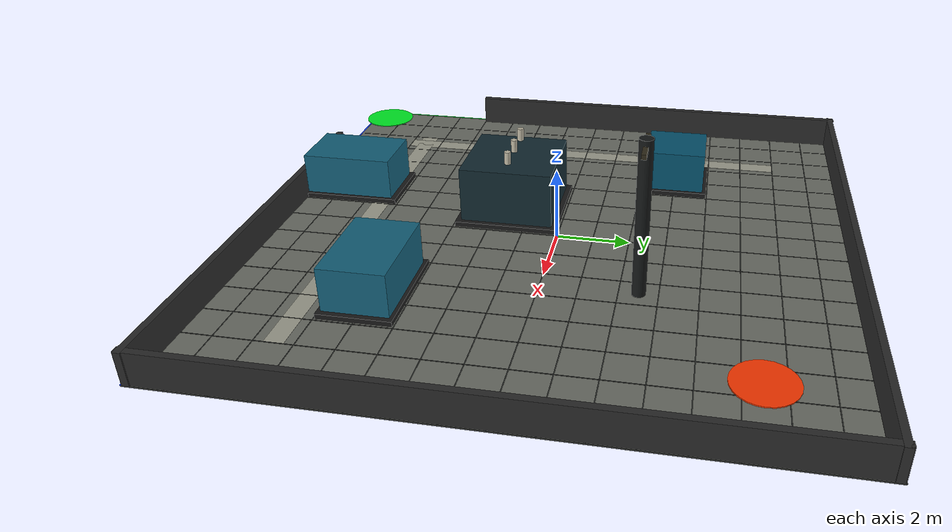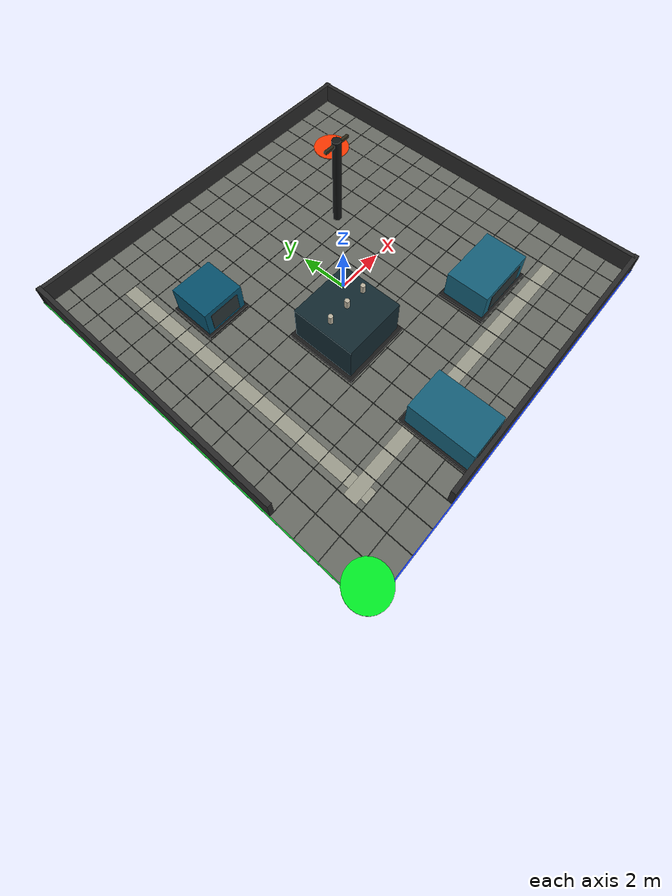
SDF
<?xml version='1.0' encoding='utf-8'?>
<sdf version="1.9">
  <world name="substation_training">
    <gravity>0 0 -9.81</gravity>
    <magnetic_field>6e-06 2.3e-05 -4.2e-05</magnetic_field>
    <atmosphere type="adiabatic" />
    <scene>
      <ambient>0.72 0.72 0.72 1</ambient>
      <background>0.72 0.75 0.78 1</background>
    </scene>
    <light name="sun" type="directional">
      <cast_shadows>true</cast_shadows>
      <pose>0 0 20 0 0 0</pose>
      <diffuse>0.85 0.85 0.82 1</diffuse>
      <specular>0.2 0.2 0.2 1</specular>
      <direction>-0.5 0.1 -0.9</direction>
    </light>
    <spherical_coordinates>
      <surface_model>EARTH_WGS84</surface_model>
      <world_frame_orientation>ENU</world_frame_orientation>
      <latitude_deg>47.397971057728974</latitude_deg>
      <longitude_deg>8.546163739800146</longitude_deg>
      <elevation>0</elevation>
    </spherical_coordinates>
    <model name="substation_map">
      <static>true</static>
      <pose>-8 -8 0 0 0 0</pose>
      <model name="ground_plane">
        <static>true</static>
        <pose>8 8 0 0 0 0</pose>
        <link name="link">
          <collision name="collision">
            <geometry>
              <plane>
                <normal>0 0 1</normal>
                <size>20 20</size>
              </plane>
            </geometry>
          </collision>
        </link>
      </model>
      <model name="substation_floor">
        <static>true</static>
        <pose>8 8 0.01 0 0 0</pose>
        <link name="link">
          <visual name="visual">
            <pose>0 0 0 0 0 0</pose>
            <geometry>
              <box>
                <size>16 16 0.02</size>
              </box>
            </geometry>
            <material>
              <ambient>0.42 0.43 0.40 1</ambient>
              <diffuse>0.42 0.43 0.40 1</diffuse>
              <specular>0.08 0.08 0.08 1</specular>
            </material>
          </visual>
        </link>
      </model>
      <model name="substation_floor_grid">
        <static>true</static>
        <pose>0 0 0 0 0 0</pose>
        <link name="link">
          <visual name="x_grid_00">
            <pose>0 8 0.024 0 0 0</pose>
            <geometry>
              <box>
                <size>0.025 16 0.006</size>
              </box>
            </geometry>
            <material>
              <ambient>0.16 0.17 0.16 1</ambient>
              <diffuse>0.16 0.17 0.16 1</diffuse>
              <specular>0.08 0.08 0.08 1</specular>
            </material>
          </visual>
          <visual name="x_grid_01">
            <pose>1 8 0.024 0 0 0</pose>
            <geometry>
              <box>
                <size>0.025 16 0.006</size>
              </box>
            </geometry>
            <material>
              <ambient>0.16 0.17 0.16 1</ambient>
              <diffuse>0.16 0.17 0.16 1</diffuse>
              <specular>0.08 0.08 0.08 1</specular>
            </material>
          </visual>
          <visual name="x_grid_02">
            <pose>2 8 0.024 0 0 0</pose>
            <geometry>
              <box>
                <size>0.025 16 0.006</size>
              </box>
            </geometry>
            <material>
              <ambient>0.16 0.17 0.16 1</ambient>
              <diffuse>0.16 0.17 0.16 1</diffuse>
              <specular>0.08 0.08 0.08 1</specular>
            </material>
          </visual>
          <visual name="x_grid_03">
            <pose>3 8 0.024 0 0 0</pose>
            <geometry>
              <box>
                <size>0.025 16 0.006</size>
              </box>
            </geometry>
            <material>
              <ambient>0.16 0.17 0.16 1</ambient>
              <diffuse>0.16 0.17 0.16 1</diffuse>
              <specular>0.08 0.08 0.08 1</specular>
            </material>
          </visual>
          <visual name="x_grid_04">
            <pose>4 8 0.024 0 0 0</pose>
            <geometry>
              <box>
                <size>0.025 16 0.006</size>
              </box>
            </geometry>
            <material>
              <ambient>0.16 0.17 0.16 1</ambient>
              <diffuse>0.16 0.17 0.16 1</diffuse>
              <specular>0.08 0.08 0.08 1</specular>
            </material>
          </visual>
          <visual name="x_grid_05">
            <pose>5 8 0.024 0 0 0</pose>
            <geometry>
              <box>
                <size>0.025 16 0.006</size>
              </box>
            </geometry>
            <material>
              <ambient>0.16 0.17 0.16 1</ambient>
              <diffuse>0.16 0.17 0.16 1</diffuse>
              <specular>0.08 0.08 0.08 1</specular>
            </material>
          </visual>
          <visual name="x_grid_06">
            <pose>6 8 0.024 0 0 0</pose>
            <geometry>
              <box>
                <size>0.025 16 0.006</size>
              </box>
            </geometry>
            <material>
              <ambient>0.16 0.17 0.16 1</ambient>
              <diffuse>0.16 0.17 0.16 1</diffuse>
              <specular>0.08 0.08 0.08 1</specular>
            </material>
          </visual>
          <visual name="x_grid_07">
            <pose>7 8 0.024 0 0 0</pose>
            <geometry>
              <box>
                <size>0.025 16 0.006</size>
              </box>
            </geometry>
            <material>
              <ambient>0.16 0.17 0.16 1</ambient>
              <diffuse>0.16 0.17 0.16 1</diffuse>
              <specular>0.08 0.08 0.08 1</specular>
            </material>
          </visual>
          <visual name="x_grid_08">
            <pose>8 8 0.024 0 0 0</pose>
            <geometry>
              <box>
                <size>0.025 16 0.006</size>
              </box>
            </geometry>
            <material>
              <ambient>0.16 0.17 0.16 1</ambient>
              <diffuse>0.16 0.17 0.16 1</diffuse>
              <specular>0.08 0.08 0.08 1</specular>
            </material>
          </visual>
          <visual name="x_grid_09">
            <pose>9 8 0.024 0 0 0</pose>
            <geometry>
              <box>
                <size>0.025 16 0.006</size>
              </box>
            </geometry>
            <material>
              <ambient>0.16 0.17 0.16 1</ambient>
              <diffuse>0.16 0.17 0.16 1</diffuse>
              <specular>0.08 0.08 0.08 1</specular>
            </material>
          </visual>
          <visual name="x_grid_10">
            <pose>10 8 0.024 0 0 0</pose>
            <geometry>
              <box>
                <size>0.025 16 0.006</size>
              </box>
            </geometry>
            <material>
              <ambient>0.16 0.17 0.16 1</ambient>
              <diffuse>0.16 0.17 0.16 1</diffuse>
              <specular>0.08 0.08 0.08 1</specular>
            </material>
          </visual>
          <visual name="x_grid_11">
            <pose>11 8 0.024 0 0 0</pose>
            <geometry>
              <box>
                <size>0.025 16 0.006</size>
              </box>
            </geometry>
            <material>
              <ambient>0.16 0.17 0.16 1</ambient>
              <diffuse>0.16 0.17 0.16 1</diffuse>
              <specular>0.08 0.08 0.08 1</specular>
            </material>
          </visual>
          <visual name="x_grid_12">
            <pose>12 8 0.024 0 0 0</pose>
            <geometry>
              <box>
                <size>0.025 16 0.006</size>
              </box>
            </geometry>
            <material>
              <ambient>0.16 0.17 0.16 1</ambient>
              <diffuse>0.16 0.17 0.16 1</diffuse>
              <specular>0.08 0.08 0.08 1</specular>
            </material>
          </visual>
          <visual name="x_grid_13">
            <pose>13 8 0.024 0 0 0</pose>
            <geometry>
              <box>
                <size>0.025 16 0.006</size>
              </box>
            </geometry>
            <material>
              <ambient>0.16 0.17 0.16 1</ambient>
              <diffuse>0.16 0.17 0.16 1</diffuse>
              <specular>0.08 0.08 0.08 1</specular>
            </material>
          </visual>
          <visual name="x_grid_14">
            <pose>14 8 0.024 0 0 0</pose>
            <geometry>
              <box>
                <size>0.025 16 0.006</size>
              </box>
            </geometry>
            <material>
              <ambient>0.16 0.17 0.16 1</ambient>
              <diffuse>0.16 0.17 0.16 1</diffuse>
              <specular>0.08 0.08 0.08 1</specular>
            </material>
          </visual>
          <visual name="x_grid_15">
            <pose>15 8 0.024 0 0 0</pose>
            <geometry>
              <box>
                <size>0.025 16 0.006</size>
              </box>
            </geometry>
            <material>
              <ambient>0.16 0.17 0.16 1</ambient>
              <diffuse>0.16 0.17 0.16 1</diffuse>
              <specular>0.08 0.08 0.08 1</specular>
            </material>
          </visual>
          <visual name="x_grid_16">
            <pose>16 8 0.024 0 0 0</pose>
            <geometry>
              <box>
                <size>0.025 16 0.006</size>
              </box>
            </geometry>
            <material>
              <ambient>0.16 0.17 0.16 1</ambient>
              <diffuse>0.16 0.17 0.16 1</diffuse>
              <specular>0.08 0.08 0.08 1</specular>
            </material>
          </visual>
          <visual name="y_grid_00">
            <pose>8 0 0.024 0 0 0</pose>
            <geometry>
              <box>
                <size>16 0.025 0.006</size>
              </box>
            </geometry>
            <material>
              <ambient>0.16 0.17 0.16 1</ambient>
              <diffuse>0.16 0.17 0.16 1</diffuse>
              <specular>0.08 0.08 0.08 1</specular>
            </material>
          </visual>
          <visual name="y_grid_01">
            <pose>8 1 0.024 0 0 0</pose>
            <geometry>
              <box>
                <size>16 0.025 0.006</size>
              </box>
            </geometry>
            <material>
              <ambient>0.16 0.17 0.16 1</ambient>
              <diffuse>0.16 0.17 0.16 1</diffuse>
              <specular>0.08 0.08 0.08 1</specular>
            </material>
          </visual>
          <visual name="y_grid_02">
            <pose>8 2 0.024 0 0 0</pose>
            <geometry>
              <box>
                <size>16 0.025 0.006</size>
              </box>
            </geometry>
            <material>
              <ambient>0.16 0.17 0.16 1</ambient>
              <diffuse>0.16 0.17 0.16 1</diffuse>
              <specular>0.08 0.08 0.08 1</specular>
            </material>
          </visual>
          <visual name="y_grid_03">
            <pose>8 3 0.024 0 0 0</pose>
            <geometry>
              <box>
                <size>16 0.025 0.006</size>
              </box>
            </geometry>
            <material>
              <ambient>0.16 0.17 0.16 1</ambient>
              <diffuse>0.16 0.17 0.16 1</diffuse>
              <specular>0.08 0.08 0.08 1</specular>
            </material>
          </visual>
          <visual name="y_grid_04">
            <pose>8 4 0.024 0 0 0</pose>
            <geometry>
              <box>
                <size>16 0.025 0.006</size>
              </box>
            </geometry>
            <material>
              <ambient>0.16 0.17 0.16 1</ambient>
              <diffuse>0.16 0.17 0.16 1</diffuse>
              <specular>0.08 0.08 0.08 1</specular>
            </material>
          </visual>
          <visual name="y_grid_05">
            <pose>8 5 0.024 0 0 0</pose>
            <geometry>
              <box>
                <size>16 0.025 0.006</size>
              </box>
            </geometry>
            <material>
              <ambient>0.16 0.17 0.16 1</ambient>
              <diffuse>0.16 0.17 0.16 1</diffuse>
              <specular>0.08 0.08 0.08 1</specular>
            </material>
          </visual>
          <visual name="y_grid_06">
            <pose>8 6 0.024 0 0 0</pose>
            <geometry>
              <box>
                <size>16 0.025 0.006</size>
              </box>
            </geometry>
            <material>
              <ambient>0.16 0.17 0.16 1</ambient>
              <diffuse>0.16 0.17 0.16 1</diffuse>
              <specular>0.08 0.08 0.08 1</specular>
            </material>
          </visual>
          <visual name="y_grid_07">
            <pose>8 7 0.024 0 0 0</pose>
            <geometry>
              <box>
                <size>16 0.025 0.006</size>
              </box>
            </geometry>
            <material>
              <ambient>0.16 0.17 0.16 1</ambient>
              <diffuse>0.16 0.17 0.16 1</diffuse>
              <specular>0.08 0.08 0.08 1</specular>
            </material>
          </visual>
          <visual name="y_grid_08">
            <pose>8 8 0.024 0 0 0</pose>
            <geometry>
              <box>
                <size>16 0.025 0.006</size>
              </box>
            </geometry>
            <material>
              <ambient>0.16 0.17 0.16 1</ambient>
              <diffuse>0.16 0.17 0.16 1</diffuse>
              <specular>0.08 0.08 0.08 1</specular>
            </material>
          </visual>
          <visual name="y_grid_09">
            <pose>8 9 0.024 0 0 0</pose>
            <geometry>
              <box>
                <size>16 0.025 0.006</size>
              </box>
            </geometry>
            <material>
              <ambient>0.16 0.17 0.16 1</ambient>
              <diffuse>0.16 0.17 0.16 1</diffuse>
              <specular>0.08 0.08 0.08 1</specular>
            </material>
          </visual>
          <visual name="y_grid_10">
            <pose>8 10 0.024 0 0 0</pose>
            <geometry>
              <box>
                <size>16 0.025 0.006</size>
              </box>
            </geometry>
            <material>
              <ambient>0.16 0.17 0.16 1</ambient>
              <diffuse>0.16 0.17 0.16 1</diffuse>
              <specular>0.08 0.08 0.08 1</specular>
            </material>
          </visual>
          <visual name="y_grid_11">
            <pose>8 11 0.024 0 0 0</pose>
            <geometry>
              <box>
                <size>16 0.025 0.006</size>
              </box>
            </geometry>
            <material>
              <ambient>0.16 0.17 0.16 1</ambient>
              <diffuse>0.16 0.17 0.16 1</diffuse>
              <specular>0.08 0.08 0.08 1</specular>
            </material>
          </visual>
          <visual name="y_grid_12">
            <pose>8 12 0.024 0 0 0</pose>
            <geometry>
              <box>
                <size>16 0.025 0.006</size>
              </box>
            </geometry>
            <material>
              <ambient>0.16 0.17 0.16 1</ambient>
              <diffuse>0.16 0.17 0.16 1</diffuse>
              <specular>0.08 0.08 0.08 1</specular>
            </material>
          </visual>
          <visual name="y_grid_13">
            <pose>8 13 0.024 0 0 0</pose>
            <geometry>
              <box>
                <size>16 0.025 0.006</size>
              </box>
            </geometry>
            <material>
              <ambient>0.16 0.17 0.16 1</ambient>
              <diffuse>0.16 0.17 0.16 1</diffuse>
              <specular>0.08 0.08 0.08 1</specular>
            </material>
          </visual>
          <visual name="y_grid_14">
            <pose>8 14 0.024 0 0 0</pose>
            <geometry>
              <box>
                <size>16 0.025 0.006</size>
              </box>
            </geometry>
            <material>
              <ambient>0.16 0.17 0.16 1</ambient>
              <diffuse>0.16 0.17 0.16 1</diffuse>
              <specular>0.08 0.08 0.08 1</specular>
            </material>
          </visual>
          <visual name="y_grid_15">
            <pose>8 15 0.024 0 0 0</pose>
            <geometry>
              <box>
                <size>16 0.025 0.006</size>
              </box>
            </geometry>
            <material>
              <ambient>0.16 0.17 0.16 1</ambient>
              <diffuse>0.16 0.17 0.16 1</diffuse>
              <specular>0.08 0.08 0.08 1</specular>
            </material>
          </visual>
          <visual name="y_grid_16">
            <pose>8 16 0.024 0 0 0</pose>
            <geometry>
              <box>
                <size>16 0.025 0.006</size>
              </box>
            </geometry>
            <material>
              <ambient>0.16 0.17 0.16 1</ambient>
              <diffuse>0.16 0.17 0.16 1</diffuse>
              <specular>0.08 0.08 0.08 1</specular>
            </material>
          </visual>
        </link>
      </model>
      <model name="map_axes">
        <static>true</static>
        <pose>0 0 0 0 0 0</pose>
        <link name="link">
          <visual name="east_axis">
            <pose>8 0 0.028 0 0 0</pose>
            <geometry>
              <box>
                <size>16 0.045 0.012</size>
              </box>
            </geometry>
            <material>
              <ambient>0.08 0.24 0.95 1</ambient>
              <diffuse>0.08 0.24 0.95 1</diffuse>
              <specular>0.08 0.08 0.08 1</specular>
            </material>
          </visual>
          <visual name="north_axis">
            <pose>0 8 0.028 0 0 0</pose>
            <geometry>
              <box>
                <size>0.045 16 0.012</size>
              </box>
            </geometry>
            <material>
              <ambient>0.05 0.76 0.18 1</ambient>
              <diffuse>0.05 0.76 0.18 1</diffuse>
              <specular>0.08 0.08 0.08 1</specular>
            </material>
          </visual>
        </link>
      </model>
      <model name="service_corridor_1">
        <static>true</static>
        <pose>8 2.5 0.021 0 0 0</pose>
        <link name="link">
          <visual name="visual">
            <pose>0 0 0 0 0 0</pose>
            <geometry>
              <box>
                <size>12 0.5 0.01</size>
              </box>
            </geometry>
            <material>
              <ambient>0.62 0.62 0.56 1</ambient>
              <diffuse>0.62 0.62 0.56 1</diffuse>
              <specular>0.08 0.08 0.08 1</specular>
            </material>
          </visual>
        </link>
      </model>
      <model name="service_corridor_2">
        <static>true</static>
        <pose>2.5 8 0.021 0 0 0</pose>
        <link name="link">
          <visual name="visual">
            <pose>0 0 0 0 0 0</pose>
            <geometry>
              <box>
                <size>0.5 12 0.01</size>
              </box>
            </geometry>
            <material>
              <ambient>0.62 0.62 0.56 1</ambient>
              <diffuse>0.62 0.62 0.56 1</diffuse>
              <specular>0.08 0.08 0.08 1</specular>
            </material>
          </visual>
        </link>
      </model>
      <model name="start_marker">
        <static>true</static>
        <pose>0.5 0.5 0.035 0 0 0</pose>
        <link name="link">
          <visual name="visual">
            <pose>0 0 0 0 0 0</pose>
            <geometry>
              <cylinder>
                <radius>0.8</radius>
                <length>0.03</length>
              </cylinder>
            </geometry>
            <material>
              <ambient>0.0 0.95 0.15 1</ambient>
              <diffuse>0.0 0.95 0.15 1</diffuse>
              <specular>0.08 0.08 0.08 1</specular>
            </material>
          </visual>
        </link>
      </model>
      <model name="goal_marker">
        <static>true</static>
        <pose>13.5 13.5 0.035 0 0 0</pose>
        <link name="link">
          <visual name="visual">
            <pose>0 0 0 0 0 0</pose>
            <geometry>
              <cylinder>
                <radius>0.8</radius>
                <length>0.03</length>
              </cylinder>
            </geometry>
            <material>
              <ambient>1.0 0.22 0.0 1</ambient>
              <diffuse>1.0 0.22 0.0 1</diffuse>
              <specular>0.08 0.08 0.08 1</specular>
            </material>
          </visual>
        </link>
      </model>
      <model name="entry_switchgear">
        <static>true</static>
        <pose>6 1.5 0 0 0 0</pose>
        <link name="link">
          <collision name="collision">
            <pose>0 0 0.7 0 0 0</pose>
            <geometry>
              <box>
                <size>1.84 2.76 1.4</size>
              </box>
            </geometry>
          </collision>
          <visual name="base">
            <pose>0 0 0.08 0 0 0</pose>
            <geometry>
              <box>
                <size>1.92 2.88 0.16</size>
              </box>
            </geometry>
            <material>
              <ambient>0.10 0.10 0.10 1</ambient>
              <diffuse>0.10 0.10 0.10 1</diffuse>
              <specular>0.08 0.08 0.08 1</specular>
            </material>
          </visual>
          <visual name="body">
            <pose>0 0 0.7 0 0 0</pose>
            <geometry>
              <box>
                <size>1.72 2.58 1.26</size>
              </box>
            </geometry>
            <material>
              <ambient>0.08 0.38 0.48 1</ambient>
              <diffuse>0.08 0.38 0.48 1</diffuse>
              <specular>0.08 0.08 0.08 1</specular>
            </material>
          </visual>
          <visual name="front_panel">
            <pose>0 -1.305 0.7 0 0 0</pose>
            <geometry>
              <box>
                <size>1.24 0.025 0.812</size>
              </box>
            </geometry>
            <material>
              <ambient>0.16 0.20 0.21 1</ambient>
              <diffuse>0.16 0.20 0.21 1</diffuse>
              <specular>0.08 0.08 0.08 1</specular>
            </material>
          </visual>
        </link>
      </model>
      <model name="transformer_a">
        <static>true</static>
        <pose>6.5 6.5 0 0 0 0</pose>
        <link name="link">
          <collision name="collision">
            <pose>0 0 0.9 0 0 0</pose>
            <geometry>
              <box>
                <size>2.76 2.76 1.8</size>
              </box>
            </geometry>
          </collision>
          <visual name="base">
            <pose>0 0 0.08 0 0 0</pose>
            <geometry>
              <box>
                <size>2.88 2.88 0.16</size>
              </box>
            </geometry>
            <material>
              <ambient>0.10 0.10 0.10 1</ambient>
              <diffuse>0.10 0.10 0.10 1</diffuse>
              <specular>0.08 0.08 0.08 1</specular>
            </material>
          </visual>
          <visual name="body">
            <pose>0 0 0.9 0 0 0</pose>
            <geometry>
              <box>
                <size>2.58 2.58 1.62</size>
              </box>
            </geometry>
            <material>
              <ambient>0.07 0.16 0.19 1</ambient>
              <diffuse>0.07 0.16 0.19 1</diffuse>
              <specular>0.08 0.08 0.08 1</specular>
            </material>
          </visual>
          <visual name="bushing_1">
            <pose>-0.84 0 1.98 0 0 0</pose>
            <geometry>
              <cylinder>
                <radius>0.09</radius>
                <length>0.36</length>
              </cylinder>
            </geometry>
            <material>
              <ambient>0.75 0.72 0.64 1</ambient>
              <diffuse>0.75 0.72 0.64 1</diffuse>
              <specular>0.08 0.08 0.08 1</specular>
            </material>
          </visual>
          <visual name="bushing_2">
            <pose>0 0 1.98 0 0 0</pose>
            <geometry>
              <cylinder>
                <radius>0.09</radius>
                <length>0.36</length>
              </cylinder>
            </geometry>
            <material>
              <ambient>0.75 0.72 0.64 1</ambient>
              <diffuse>0.75 0.72 0.64 1</diffuse>
              <specular>0.08 0.08 0.08 1</specular>
            </material>
          </visual>
          <visual name="bushing_3">
            <pose>0.84 0 1.98 0 0 0</pose>
            <geometry>
              <cylinder>
                <radius>0.09</radius>
                <length>0.36</length>
              </cylinder>
            </geometry>
            <material>
              <ambient>0.75 0.72 0.64 1</ambient>
              <diffuse>0.75 0.72 0.64 1</diffuse>
              <specular>0.08 0.08 0.08 1</specular>
            </material>
          </visual>
        </link>
      </model>
      <model name="cabinet_north">
        <static>true</static>
        <pose>4 11 0 0 0 0</pose>
        <link name="link">
          <collision name="collision">
            <pose>0 0 0.7 0 0 0</pose>
            <geometry>
              <box>
                <size>1.84 1.84 1.4</size>
              </box>
            </geometry>
          </collision>
          <visual name="base">
            <pose>0 0 0.08 0 0 0</pose>
            <geometry>
              <box>
                <size>1.92 1.92 0.16</size>
              </box>
            </geometry>
            <material>
              <ambient>0.10 0.10 0.10 1</ambient>
              <diffuse>0.10 0.10 0.10 1</diffuse>
              <specular>0.08 0.08 0.08 1</specular>
            </material>
          </visual>
          <visual name="body">
            <pose>0 0 0.7 0 0 0</pose>
            <geometry>
              <box>
                <size>1.72 1.72 1.26</size>
              </box>
            </geometry>
            <material>
              <ambient>0.02 0.32 0.43 1</ambient>
              <diffuse>0.02 0.32 0.43 1</diffuse>
              <specular>0.08 0.08 0.08 1</specular>
            </material>
          </visual>
          <visual name="front_panel">
            <pose>0 -0.87 0.7 0 0 0</pose>
            <geometry>
              <box>
                <size>1.24 0.025 0.812</size>
              </box>
            </geometry>
            <material>
              <ambient>0.16 0.20 0.21 1</ambient>
              <diffuse>0.16 0.20 0.21 1</diffuse>
              <specular>0.08 0.08 0.08 1</specular>
            </material>
          </visual>
        </link>
      </model>
      <model name="switchgear_east">
        <static>true</static>
        <pose>11.5 4 0 0 0 0</pose>
        <link name="link">
          <collision name="collision">
            <pose>0 0 0.7 0 0 0</pose>
            <geometry>
              <box>
                <size>2.76 1.84 1.4</size>
              </box>
            </geometry>
          </collision>
          <visual name="base">
            <pose>0 0 0.08 0 0 0</pose>
            <geometry>
              <box>
                <size>2.88 1.92 0.16</size>
              </box>
            </geometry>
            <material>
              <ambient>0.10 0.10 0.10 1</ambient>
              <diffuse>0.10 0.10 0.10 1</diffuse>
              <specular>0.08 0.08 0.08 1</specular>
            </material>
          </visual>
          <visual name="body">
            <pose>0 0 0.7 0 0 0</pose>
            <geometry>
              <box>
                <size>2.58 1.72 1.26</size>
              </box>
            </geometry>
            <material>
              <ambient>0.08 0.38 0.48 1</ambient>
              <diffuse>0.08 0.38 0.48 1</diffuse>
              <specular>0.08 0.08 0.08 1</specular>
            </material>
          </visual>
          <visual name="front_panel">
            <pose>0 -0.87 0.7 0 0 0</pose>
            <geometry>
              <box>
                <size>1.86 0.025 0.812</size>
              </box>
            </geometry>
            <material>
              <ambient>0.16 0.20 0.21 1</ambient>
              <diffuse>0.16 0.20 0.21 1</diffuse>
              <specular>0.08 0.08 0.08 1</specular>
            </material>
          </visual>
        </link>
      </model>
      <model name="pole_center">
        <static>true</static>
        <pose>10.5 10.5 0 0 0 0</pose>
        <link name="link">
          <collision name="collision">
            <pose>0 0 2.1 0 0 0</pose>
            <geometry>
              <cylinder>
                <radius>0.22</radius>
                <length>4.2</length>
              </cylinder>
            </geometry>
          </collision>
          <visual name="pole">
            <pose>0 0 2.1 0 0 0</pose>
            <geometry>
              <cylinder>
                <radius>0.18</radius>
                <length>4.2</length>
              </cylinder>
            </geometry>
            <material>
              <ambient>0.08 0.09 0.09 1</ambient>
              <diffuse>0.08 0.09 0.09 1</diffuse>
              <specular>0.08 0.08 0.08 1</specular>
            </material>
          </visual>
          <visual name="crossarm">
            <pose>0 0 4 0 0 0</pose>
            <geometry>
              <box>
                <size>1.25 0.12 0.12</size>
              </box>
            </geometry>
            <material>
              <ambient>0.18 0.16 0.10 1</ambient>
              <diffuse>0.18 0.16 0.10 1</diffuse>
              <specular>0.08 0.08 0.08 1</specular>
            </material>
          </visual>
        </link>
      </model>
      <model name="fence_north">
        <static>true</static>
        <pose>8 15.88 0.45 0 0 0</pose>
        <link name="link">
          <collision name="collision">
            <pose>0 0 0 0 0 0</pose>
            <geometry>
              <box>
                <size>16 0.18 0.9</size>
              </box>
            </geometry>
          </collision>
          <visual name="visual">
            <pose>0 0 0 0 0 0</pose>
            <geometry>
              <box>
                <size>16 0.18 0.9</size>
              </box>
            </geometry>
            <material>
              <ambient>0.16 0.16 0.16 1</ambient>
              <diffuse>0.16 0.16 0.16 1</diffuse>
              <specular>0.08 0.08 0.08 1</specular>
            </material>
          </visual>
        </link>
      </model>
      <model name="fence_east">
        <static>true</static>
        <pose>15.88 8 0.45 0 0 0</pose>
        <link name="link">
          <collision name="collision">
            <pose>0 0 0 0 0 0</pose>
            <geometry>
              <box>
                <size>0.18 16 0.9</size>
              </box>
            </geometry>
          </collision>
          <visual name="visual">
            <pose>0 0 0 0 0 0</pose>
            <geometry>
              <box>
                <size>0.18 16 0.9</size>
              </box>
            </geometry>
            <material>
              <ambient>0.16 0.16 0.16 1</ambient>
              <diffuse>0.16 0.16 0.16 1</diffuse>
              <specular>0.08 0.08 0.08 1</specular>
            </material>
          </visual>
        </link>
      </model>
      <model name="fence_south">
        <static>true</static>
        <pose>10 0.12 0.45 0 0 0</pose>
        <link name="link">
          <collision name="collision">
            <pose>0 0 0 0 0 0</pose>
            <geometry>
              <box>
                <size>12 0.18 0.9</size>
              </box>
            </geometry>
          </collision>
          <visual name="visual">
            <pose>0 0 0 0 0 0</pose>
            <geometry>
              <box>
                <size>12 0.18 0.9</size>
              </box>
            </geometry>
            <material>
              <ambient>0.16 0.16 0.16 1</ambient>
              <diffuse>0.16 0.16 0.16 1</diffuse>
              <specular>0.08 0.08 0.08 1</specular>
            </material>
          </visual>
        </link>
      </model>
      <model name="fence_west">
        <static>true</static>
        <pose>0.12 10 0.45 0 0 0</pose>
        <link name="link">
          <collision name="collision">
            <pose>0 0 0 0 0 0</pose>
            <geometry>
              <box>
                <size>0.18 12 0.9</size>
              </box>
            </geometry>
          </collision>
          <visual name="visual">
            <pose>0 0 0 0 0 0</pose>
            <geometry>
              <box>
                <size>0.18 12 0.9</size>
              </box>
            </geometry>
            <material>
              <ambient>0.16 0.16 0.16 1</ambient>
              <diffuse>0.16 0.16 0.16 1</diffuse>
              <specular>0.08 0.08 0.08 1</specular>
            </material>
          </visual>
        </link>
      </model>
    </model>
  </world>
</sdf>
